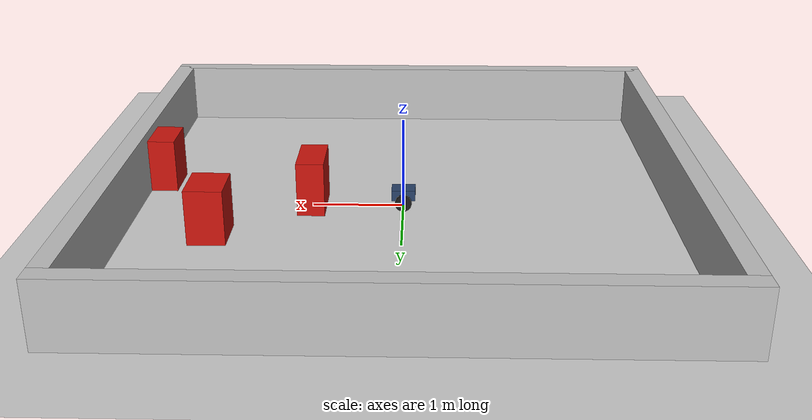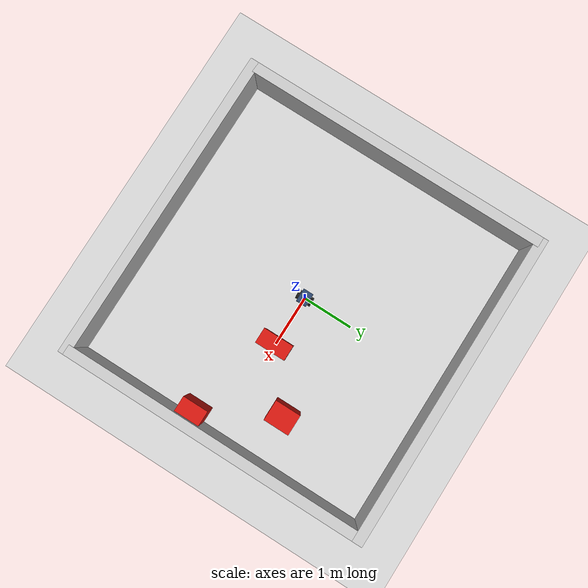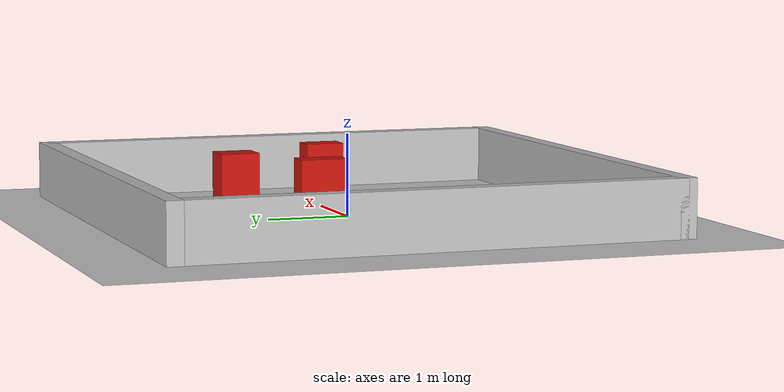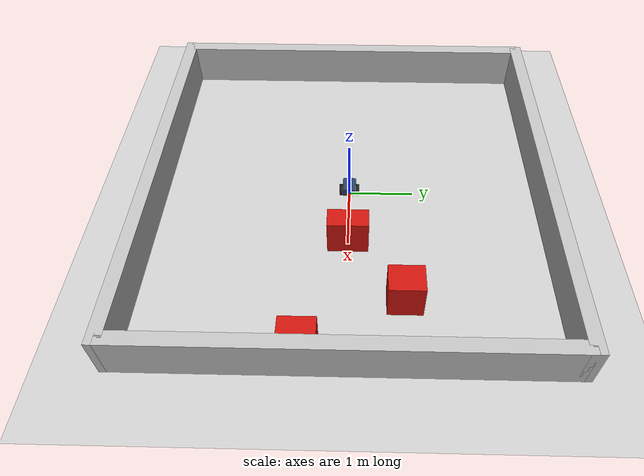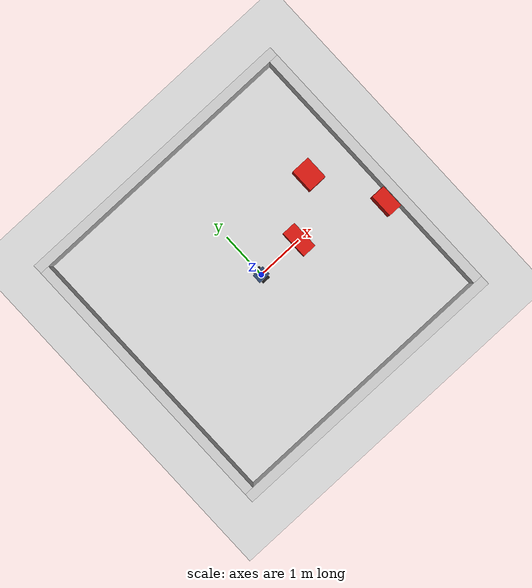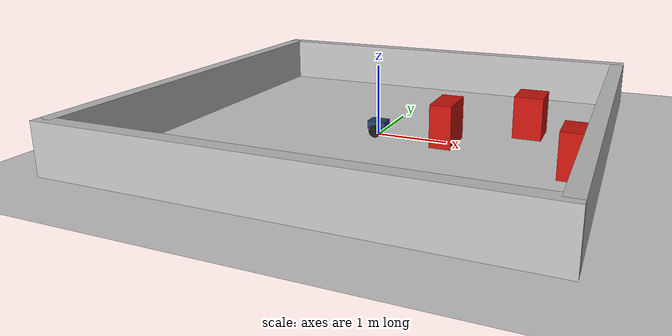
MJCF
<mujoco model="TASS navigation experiment">
  <compiler angle="degree"/>
  <option timestep="0.005" gravity="0 0 -9.81"/>
  <visual><global offwidth="320" offheight="240"/><headlight ambient="0.5 0.5 0.5"/></visual>
  <asset>
    <texture name="checker" type="2d" builtin="checker" rgb1="0.7 0.7 0.7" rgb2="0.9 0.9 0.9" width="256" height="256"/>
    <material name="floor" texture="checker" texrepeat="8 8"/>
  </asset>
  <default><geom friction="1.5 0.01 0.001"/><joint damping="0.05"/></default>
  <worldbody>
    <light pos="0 0 4"/>
    <geom name="floor" type="plane" size="4 4 0.1" material="floor"/>
    <geom name="obstacle_front" type="box" pos="1 0 0.3" size="0.15 0.3 0.3" rgba="0.8 0.08 0.05 1"/>
    <geom name="obstacle_left" type="box" pos="2 0.8 0.3" size="0.2 0.25 0.3" rgba="0.8 0.08 0.05 1"/>
    <geom name="obstacle_right" type="box" pos="2.8 -0.6 0.3" size="0.2 0.25 0.3" rgba="0.8 0.08 0.05 1"/>
    <geom name="wall_n" type="box" pos="0 3 0.35" size="3.1 0.1 0.35" rgba="0.75 0.75 0.75 1"/>
    <geom name="wall_s" type="box" pos="0 -3 0.35" size="3.1 0.1 0.35" rgba="0.75 0.75 0.75 1"/>
    <geom name="wall_e" type="box" pos="3 0 0.35" size="0.1 3 0.35" rgba="0.75 0.75 0.75 1"/>
    <geom name="wall_w" type="box" pos="-3 0 0.35" size="0.1 3 0.35" rgba="0.75 0.75 0.75 1"/>
    <!-- Planar two-wheel proxy: physical wheel traction, no imposed x/y motion.
         This constraint simplifies balance and is not the proposed leg mechanism. -->
    <!-- 5 mm contact preload supplies traction under the planar height constraint. -->
    <body name="robot" pos="0 0 0.155">
      <joint name="x" type="slide" axis="1 0 0" damping="0"/>
      <joint name="y" type="slide" axis="0 1 0" damping="0"/>
      <joint name="heading" type="hinge" axis="0 0 1" damping="0"/>
      <geom name="chassis" type="box" size="0.13 0.1 0.06" mass="0.5" rgba="0.15 0.25 0.4 1"/>
      <camera name="eye" pos="0.14 0 0.09" xyaxes="0 -1 0 0 0 1" fovy="70"/>
      <body name="left_wheel" pos="0 0.13 -0.07">
        <joint name="left_motor" type="hinge" axis="0 1 0"/>
        <geom name="left_tire" type="cylinder" size="0.09 0.025" euler="90 0 0" mass="0.08" rgba="0.1 0.1 0.1 1"/>
      </body>
      <body name="right_wheel" pos="0 -0.13 -0.07">
        <joint name="right_motor" type="hinge" axis="0 1 0"/>
        <geom name="right_tire" type="cylinder" size="0.09 0.025" euler="90 0 0" mass="0.08" rgba="0.1 0.1 0.1 1"/>
      </body>
    </body>
  </worldbody>
  <actuator>
    <velocity name="left_drive" joint="left_motor" kv="1" ctrllimited="true" ctrlrange="-15 15" forcelimited="true" forcerange="-1 1"/>
    <velocity name="right_drive" joint="right_motor" kv="1" ctrllimited="true" ctrlrange="-15 15" forcelimited="true" forcerange="-1 1"/>
  </actuator>
</mujoco>
